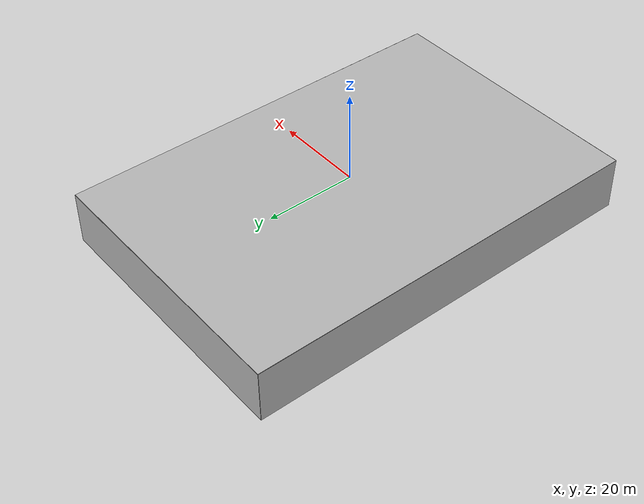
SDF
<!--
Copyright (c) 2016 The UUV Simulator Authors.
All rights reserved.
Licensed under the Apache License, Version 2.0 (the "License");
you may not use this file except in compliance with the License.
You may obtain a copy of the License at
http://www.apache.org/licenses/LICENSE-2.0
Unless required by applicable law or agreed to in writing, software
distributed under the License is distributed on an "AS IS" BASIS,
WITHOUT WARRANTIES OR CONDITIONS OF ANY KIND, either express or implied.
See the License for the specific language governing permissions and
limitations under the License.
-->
<?xml version="1.0" ?>
<sdf version="1.5">
  <model name="herkules_seabed">
    <static>true</static>
    <link name="seabed">
      <collision name="seabed">
        <pose>0 0 -11.8 0 0 1.57</pose>
        <geometry>
        <box>
            <size>91 61 .1</size>
        </box>
        </geometry>
      </collision>

      <visual name="seabed">
        <cast_shadows>true</cast_shadows>
        <pose>0 0 -11.8 0 0 1.57</pose>
        <geometry>
            <box>
                <size>91 61 .1</size>
            </box>
        </geometry>
        <material>
          <script>
            <uri>file://Media/materials/scripts/sand.material</uri>
            <name>UUVSimulator/SandAndStones</name>
          </script>
        </material>
      </visual>
    </link>

    <link name="ocean_link">
      <visual name="surface">
        <pose>0 0 0 0 0 1.57</pose>
        <cast_shadows>false</cast_shadows>
        <geometry>
          <box>
            <size>91 61 0.1</size>
          </box>
        </geometry>
        <material>
          <script>
            <uri>file://Media/materials/scripts/water.material</uri>
            <name>UUVSimulator/StaticWater</name>
          </script>
        </material>
      </visual>

      <visual name="bottom">
        <pose>0 0 -12.0 0 0 0</pose>
        <geometry>
          <box>
            <size>61 91 0.1</size>
          </box>
        </geometry>
        <material>
          <script>
            <uri>file://Media/materials/scripts/water.material</uri>
            <name>UUVSimulator/SeaWall</name>
          </script>
        </material>
      </visual>

      <visual name="north_wall">
        <pose>0 45.5 -6 0 0 0</pose>
        <geometry>
          <box>
            <size>61 0.1 12</size>
          </box>
        </geometry>
        <material>
          <script>
            <uri>file://Media/materials/scripts/water.material</uri>
            <name>UUVSimulator/SeaWall</name>
          </script>
        </material>
      </visual>

      <visual name="south_wall">
        <pose>0 -45.5 -6 0 0 0</pose>
        <geometry>
          <box>
            <size>61 0.1 12</size>
          </box>
        </geometry>
        <material>
          <script>
            <uri>file://Media/materials/scripts/water.material</uri>
            <name>UUVSimulator/SeaWall</name>
          </script>
        </material>
      </visual>

      <visual name="east_wall">
        <pose>30.5 0 -6 0 0 0</pose>
        <geometry>
          <box>
            <size>0.1 91 12</size>
          </box>
        </geometry>
        <material>
          <script>
            <uri>file://Media/materials/scripts/water.material</uri>
            <name>UUVSimulator/SeaWall</name>
          </script>
        </material>
      </visual>

      <visual name="west_wall">
        <pose>-30.5 0 -6 0 0 0</pose>
        <geometry>
          <box>
            <size>0.1 91 12</size>
          </box>
        </geometry>
        <material>
          <script>
            <uri>file://Media/materials/scripts/water.material</uri>
            <name>UUVSimulator/SeaWall</name>
          </script>
        </material>
      </visual>
    </link>
  </model>
</sdf>
